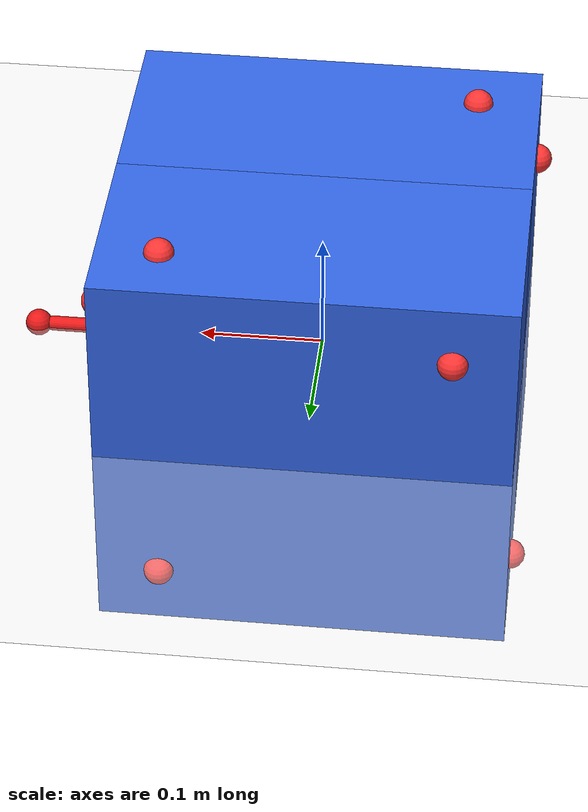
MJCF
<?xml version="1.0" encoding="utf-8"?>
<mujoco model="belka3d">
  <compiler angle="radian" coordinate="local" inertiafromgeom="false"/>
  <option timestep="0.002" gravity="0 0 0" integrator="RK4"/>
  <size njmax="1000" nconmax="100"/>
  <default>
    <joint damping="0.0" armature="0.0"/>
    <geom friction="0 0 0" rgba="0.7 0.7 0.7 1"/>
    <site rgba="1 0.2 0.2 1" size="0.012"/>
    <general ctrllimited="true" ctrlrange="0 0.5" gaintype="fixed"/>
  </default>

  <worldbody>
    <geom name="ground" type="plane" size="2.5 2.5 0.1" rgba="0.95 0.95 0.95 1" contype="0" conaffinity="0"/>

    <body name="belka">
      <freejoint name="root"/>
      <inertial
        pos="0.0 0.0 0.0"
        mass="4.0"
        fullinertia="0.07260000000000001 0.07260000000000001 0.07260000000000001 0.0 0.0 0.0"/>

      <geom name="left_side" type="box" pos="0.0 -0.0825 0.0" size="0.165 0.0825 0.165" rgba="0.2 0.4 0.9 1" contype="0" conaffinity="0"/>
      <geom name="right_side" type="box" pos="0.0 0.0825 0.0" size="0.165 0.0825 0.165" rgba="0.2 0.4 0.9 1" contype="0" conaffinity="0"/>
      <geom name="real_front_shaft" type="capsule" fromto="0.0 0.0 0.0 0.223 0.0 0.0" size="0.006" rgba="0.9 0.1 0.1 0.95" contype="0" conaffinity="0"/>
      <geom name="real_front_tip" type="sphere" pos="0.235 0.0 0.0" size="0.0108" rgba="0.9 0.1 0.1 0.95" contype="0" conaffinity="0"/>
      <geom name="presented_front_shaft" type="capsule" fromto="0.0 0.0 0.0 0.223 0.0 0.0" size="0.006" rgba="0.95 0.8 0.05 0.95" contype="0" conaffinity="0"/>
      <geom name="presented_front_tip" type="sphere" pos="0.235 0.0 0.0" size="0.0108" rgba="0.95 0.8 0.05 0.95" contype="0" conaffinity="0"/>

      <site name="thr0" pos="-0.165 -0.115 0.115" />
      <site name="thr1" pos="-0.165 0.115 -0.115" />
      <site name="thr2" pos="0.165 0.115 0.115" />
      <site name="thr3" pos="0.165 -0.115 -0.115" />
      <site name="thr4" pos="0.115 -0.165 0.115" />
      <site name="thr5" pos="-0.115 -0.165 -0.115" />
      <site name="thr6" pos="-0.115 0.165 0.115" />
      <site name="thr7" pos="0.115 0.165 -0.115" />
      <site name="thr8" pos="-0.115 -0.115 -0.165" />
      <site name="thr9" pos="0.115 0.115 -0.165" />
      <site name="thr10" pos="-0.115 -0.115 0.165" />
      <site name="thr11" pos="0.115 0.115 0.165" />
    </body>
  </worldbody>

  <actuator>
    <general name="F1"  site="thr0"  gear=" 1  0  0 0 0 0"/>
    <general name="F2"  site="thr1"  gear=" 1  0  0 0 0 0"/>
    <general name="F3"  site="thr2"  gear="-1  0  0 0 0 0"/>
    <general name="F4"  site="thr3"  gear="-1  0  0 0 0 0"/>
    <general name="F5"  site="thr4"  gear=" 0  1  0 0 0 0"/>
    <general name="F6"  site="thr5"  gear=" 0  1  0 0 0 0"/>
    <general name="F7"  site="thr6"  gear=" 0 -1  0 0 0 0"/>
    <general name="F8"  site="thr7"  gear=" 0 -1  0 0 0 0"/>
    <general name="F9"  site="thr8"  gear=" 0  0  1 0 0 0"/>
    <general name="F10" site="thr9"  gear=" 0  0  1 0 0 0"/>
    <general name="F11" site="thr10" gear=" 0  0 -1 0 0 0"/>
    <general name="F12" site="thr11" gear=" 0  0 -1 0 0 0"/>
  </actuator>
</mujoco>
